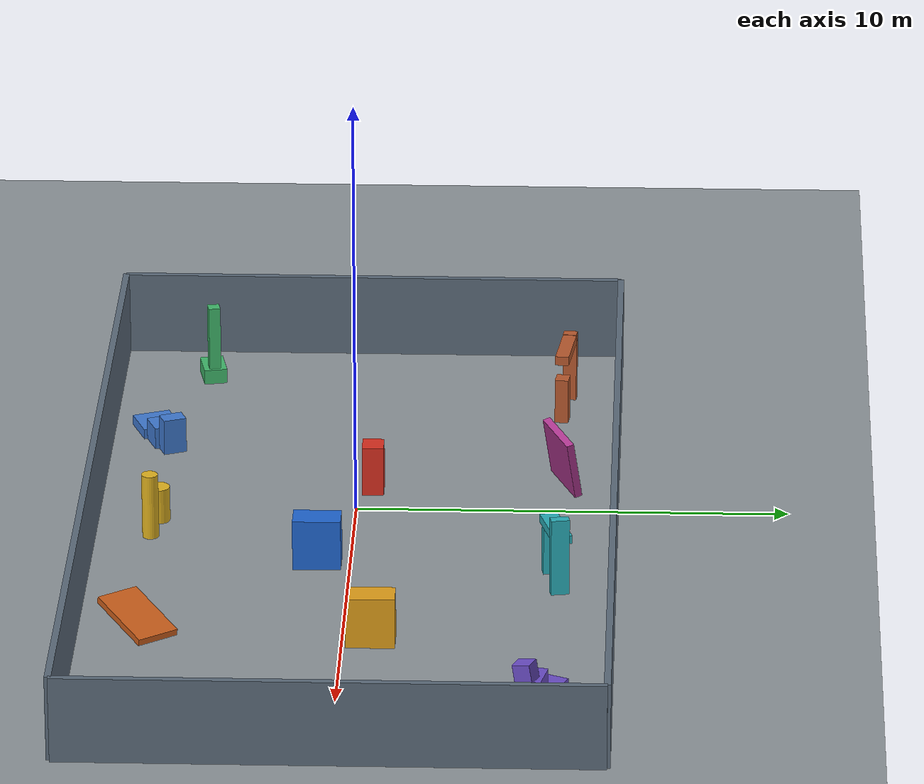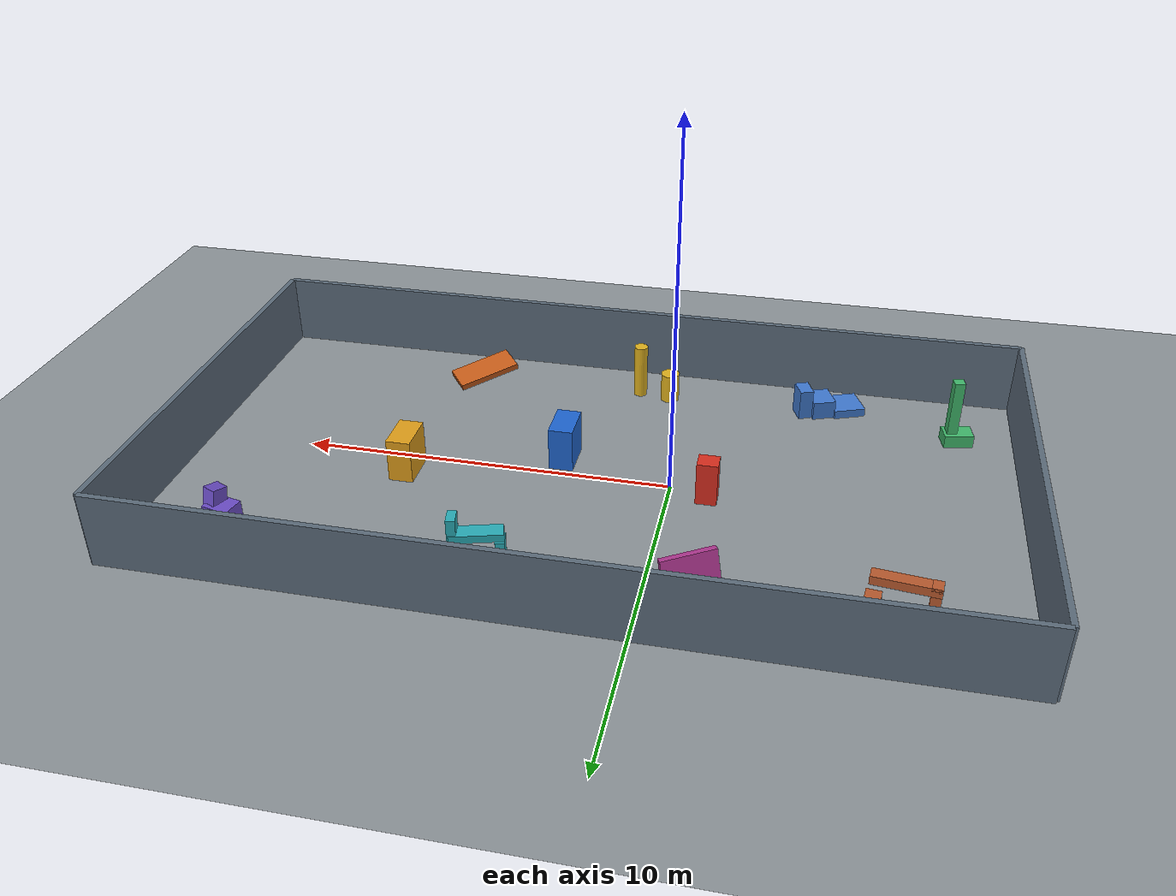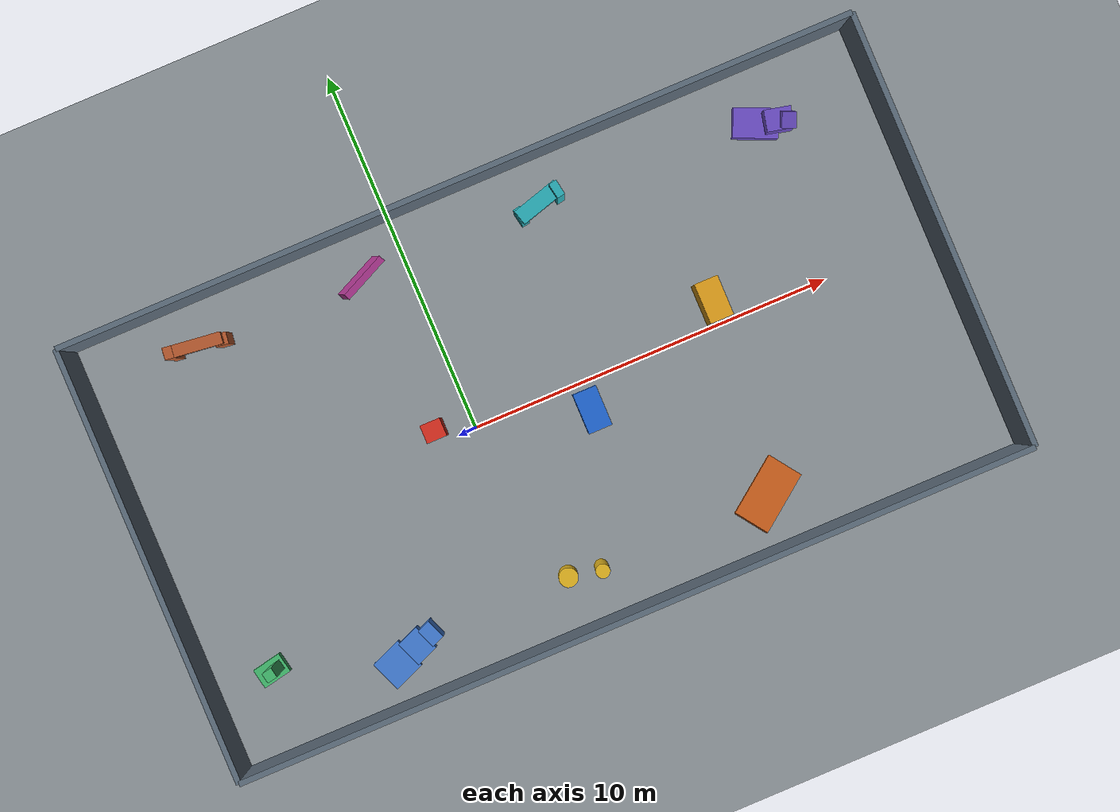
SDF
<?xml version="1.0"?>
<sdf version="1.9">
  <world name="tower">
    <physics name="physics" type="ignored">
      <max_step_size>0.001</max_step_size>
      <real_time_factor>0.5</real_time_factor>
    </physics>
    <gravity>0 0 -9.81</gravity>
    <plugin filename="gz-sim-physics-system" name="gz::sim::systems::Physics"/>
    <plugin filename="gz-sim-user-commands-system" name="gz::sim::systems::UserCommands"/>
    <plugin filename="gz-sim-scene-broadcaster-system" name="gz::sim::systems::SceneBroadcaster"/>
    <plugin filename="gz-sim-sensors-system" name="gz::sim::systems::Sensors">
      <render_engine>ogre2</render_engine>
    </plugin>

    <light name="sun" type="directional">
      <pose>0 0 10 0 0 0</pose>
      <diffuse>0.9 0.9 0.9 1</diffuse>
      <direction>-0.5 0.1 -0.9</direction>
      <cast_shadows>true</cast_shadows>
    </light>

    <model name="flat_ground">
      <static>true</static>
      <link name="ground">
        <collision name="collision"><geometry><plane><normal>0 0 1</normal><size>40 24</size></plane></geometry></collision>
        <visual name="visual"><geometry><plane><normal>0 0 1</normal><size>40 24</size></plane></geometry><material><diffuse>0.55 0.58 0.60 1</diffuse></material></visual>
      </link>
    </model>

    <!-- The floor is completely level. These vertical surfaces constrain
         FAST-LIO and are also physical obstacles for SCAN to avoid. -->
    <model name="north_wall"><static>true</static><pose>2 6.0 1.0 0 0 0</pose><link name="wall"><collision name="collision"><geometry><box><size>22 0.15 2</size></box></geometry></collision><visual name="visual"><geometry><box><size>22 0.15 2</size></box></geometry><material><diffuse>0.36 0.42 0.48 1</diffuse></material></visual></link></model>
    <model name="south_wall"><static>true</static><pose>2 -6.0 1.0 0 0 0</pose><link name="wall"><collision name="collision"><geometry><box><size>22 0.15 2</size></box></geometry></collision><visual name="visual"><geometry><box><size>22 0.15 2</size></box></geometry><material><diffuse>0.36 0.42 0.48 1</diffuse></material></visual></link></model>
    <model name="west_wall"><static>true</static><pose>-9.0 0 1.0 0 0 0</pose><link name="wall"><collision name="collision"><geometry><box><size>0.15 12 2</size></box></geometry></collision><visual name="visual"><geometry><box><size>0.15 12 2</size></box></geometry><material><diffuse>0.36 0.42 0.48 1</diffuse></material></visual></link></model>
    <model name="east_wall"><static>true</static><pose>13.0 0 1.0 0 0 0</pose><link name="wall"><collision name="collision"><geometry><box><size>0.15 12 2</size></box></geometry></collision><visual name="visual"><geometry><box><size>0.15 12 2</size></box></geometry><material><diffuse>0.36 0.42 0.48 1</diffuse></material></visual></link></model>

    <model name="localization_west_beacon">
      <static>true</static><pose>-7.4 -3.8 0 0 0 0.20</pose>
      <link name="base">
        <pose>0 0 0.18 0 0 0</pose>
        <collision name="collision"><geometry><box><size>0.80 0.55 0.36</size></box></geometry></collision>
        <visual name="visual"><geometry><box><size>0.80 0.55 0.36</size></box></geometry><material><diffuse>0.25 0.72 0.42 1</diffuse></material></visual>
      </link>
      <link name="post">
        <pose>0.18 0 1.05 0 0 0</pose>
        <collision name="collision"><geometry><box><size>0.28 0.28 1.75</size></box></geometry></collision>
        <visual name="visual"><geometry><box><size>0.28 0.28 1.75</size></box></geometry><material><diffuse>0.25 0.72 0.42 1</diffuse></material></visual>
      </link>
    </model>

    <model name="localization_north_gate">
      <static>true</static><pose>-5.8 4.75 0 0 0 -0.12</pose>
      <link name="left"><pose>-0.65 0 0.85 0 0 0</pose><collision name="collision"><geometry><box><size>0.24 0.32 1.70</size></box></geometry></collision><visual name="visual"><geometry><box><size>0.24 0.32 1.70</size></box></geometry><material><diffuse>0.72 0.35 0.18 1</diffuse></material></visual></link>
      <link name="right"><pose>0.65 0 0.55 0 0 0</pose><collision name="collision"><geometry><box><size>0.36 0.32 1.10</size></box></geometry></collision><visual name="visual"><geometry><box><size>0.36 0.32 1.10</size></box></geometry><material><diffuse>0.72 0.35 0.18 1</diffuse></material></visual></link>
      <link name="beam"><pose>0 0 1.58 0 0 0</pose><collision name="collision"><geometry><box><size>1.55 0.32 0.22</size></box></geometry></collision><visual name="visual"><geometry><box><size>1.55 0.32 0.22</size></box></geometry><material><diffuse>0.72 0.35 0.18 1</diffuse></material></visual></link>
    </model>

    <model name="localization_south_steps">
      <static>true</static><pose>-3.8 -4.75 0 0 0 0.38</pose>
      <link name="step_low"><pose>-0.55 0 0.12 0 0 0</pose><collision name="collision"><geometry><box><size>0.90 0.90 0.24</size></box></geometry></collision><visual name="visual"><geometry><box><size>0.90 0.90 0.24</size></box></geometry><material><diffuse>0.25 0.48 0.82 1</diffuse></material></visual></link>
      <link name="step_mid"><pose>0.20 0 0.26 0 0 0</pose><collision name="collision"><geometry><box><size>0.65 0.75 0.52</size></box></geometry></collision><visual name="visual"><geometry><box><size>0.65 0.75 0.52</size></box></geometry><material><diffuse>0.25 0.48 0.82 1</diffuse></material></visual></link>
      <link name="step_high"><pose>0.72 0 0.43 0 0 0</pose><collision name="collision"><geometry><box><size>0.38 0.55 0.86</size></box></geometry></collision><visual name="visual"><geometry><box><size>0.38 0.55 0.86</size></box></geometry><material><diffuse>0.25 0.48 0.82 1</diffuse></material></visual></link>
    </model>

    <model name="localization_north_slanted_panel">
      <static>true</static><pose>-1.2 4.75 0.82 0.20 0.10 0.45</pose>
      <link name="panel"><collision name="collision"><geometry><box><size>1.35 0.18 1.45</size></box></geometry></collision><visual name="visual"><geometry><box><size>1.35 0.18 1.45</size></box></geometry><material><diffuse>0.70 0.22 0.58 1</diffuse></material></visual></link>
    </model>

    <model name="localization_south_towers">
      <static>true</static><pose>1.2 -4.65 0 0 0 -0.25</pose>
      <link name="short"><pose>-0.48 0 0.42 0 0 0</pose><collision name="collision"><geometry><cylinder><radius>0.26</radius><length>0.84</length></cylinder></geometry></collision><visual name="visual"><geometry><cylinder><radius>0.26</radius><length>0.84</length></cylinder></geometry><material><diffuse>0.88 0.70 0.12 1</diffuse></material></visual></link>
      <link name="tall"><pose>0.42 0.10 0.78 0 0 0</pose><collision name="collision"><geometry><cylinder><radius>0.19</radius><length>1.56</length></cylinder></geometry></collision><visual name="visual"><geometry><cylinder><radius>0.19</radius><length>1.56</length></cylinder></geometry><material><diffuse>0.88 0.70 0.12 1</diffuse></material></visual></link>
    </model>

    <model name="localization_north_arch">
      <static>true</static><pose>3.8 4.70 0 0 0 0.18</pose>
      <link name="left"><pose>-0.55 0 0.62 0 0 0</pose><collision name="collision"><geometry><box><size>0.22 0.42 1.24</size></box></geometry></collision><visual name="visual"><geometry><box><size>0.22 0.42 1.24</size></box></geometry><material><diffuse>0.16 0.68 0.72 1</diffuse></material></visual></link>
      <link name="right"><pose>0.55 0 0.92 0 0 0</pose><collision name="collision"><geometry><box><size>0.22 0.42 1.84</size></box></geometry></collision><visual name="visual"><geometry><box><size>0.22 0.42 1.84</size></box></geometry><material><diffuse>0.16 0.68 0.72 1</diffuse></material></visual></link>
      <link name="top"><pose>0 0 1.34 0 0 0.10</pose><collision name="collision"><geometry><box><size>1.28 0.42 0.20</size></box></geometry></collision><visual name="visual"><geometry><box><size>1.28 0.42 0.20</size></box></geometry><material><diffuse>0.16 0.68 0.72 1</diffuse></material></visual></link>
    </model>

    <model name="localization_south_ramp">
      <static>true</static><pose>6.4 -4.60 0.27 0 0.20 0.62</pose>
      <link name="ramp"><collision name="collision"><geometry><box><size>1.80 1.00 0.16</size></box></geometry></collision><visual name="visual"><geometry><box><size>1.80 1.00 0.16</size></box></geometry><material><diffuse>0.78 0.36 0.10 1</diffuse></material></visual></link>
    </model>

    <model name="localization_east_stack">
      <static>true</static><pose>10.2 4.35 0 0 0 -0.42</pose>
      <link name="wide"><pose>-0.35 0 0.20 0 0 0</pose><collision name="collision"><geometry><box><size>1.20 0.80 0.40</size></box></geometry></collision><visual name="visual"><geometry><box><size>1.20 0.80 0.40</size></box></geometry><material><diffuse>0.42 0.30 0.78 1</diffuse></material></visual></link>
      <link name="middle"><pose>0.20 0.05 0.57 0 0 0.20</pose><collision name="collision"><geometry><box><size>0.72 0.58 0.74</size></box></geometry></collision><visual name="visual"><geometry><box><size>0.72 0.58 0.74</size></box></geometry><material><diffuse>0.42 0.30 0.78 1</diffuse></material></visual></link>
      <link name="top"><pose>0.42 0.02 1.06 0.18 0 0</pose><collision name="collision"><geometry><box><size>0.38 0.42 0.52</size></box></geometry></collision><visual name="visual"><geometry><box><size>0.38 0.42 0.52</size></box></geometry><material><diffuse>0.42 0.30 0.78 1</diffuse></material></visual></link>
    </model>

    <model name="avoidance_block_1">
      <static>true</static><pose>-1.00 0.35 0.60 0 0 0</pose>
      <link name="block"><collision name="collision"><geometry><box><size>0.55 0.50 1.20</size></box></geometry></collision><visual name="visual"><geometry><box><size>0.55 0.50 1.20</size></box></geometry><material><diffuse>0.85 0.18 0.12 1</diffuse></material></visual></link>
    </model>
    <model name="avoidance_block_2">
      <static>true</static><pose>3.0 -0.75 0.60 0 0 0</pose>
      <link name="block"><collision name="collision"><geometry><box><size>0.65 1.10 1.20</size></box></geometry></collision><visual name="visual"><geometry><box><size>0.65 1.10 1.20</size></box></geometry><material><diffuse>0.12 0.40 0.82 1</diffuse></material></visual></link>
    </model>
    <model name="avoidance_block_3">
      <static>true</static><pose>7.0 0.65 0.60 0 0 0</pose>
      <link name="block"><collision name="collision"><geometry><box><size>0.65 1.10 1.20</size></box></geometry></collision><visual name="visual"><geometry><box><size>0.65 1.10 1.20</size></box></geometry><material><diffuse>0.88 0.62 0.10 1</diffuse></material></visual></link>
    </model>
  </world>
</sdf>
